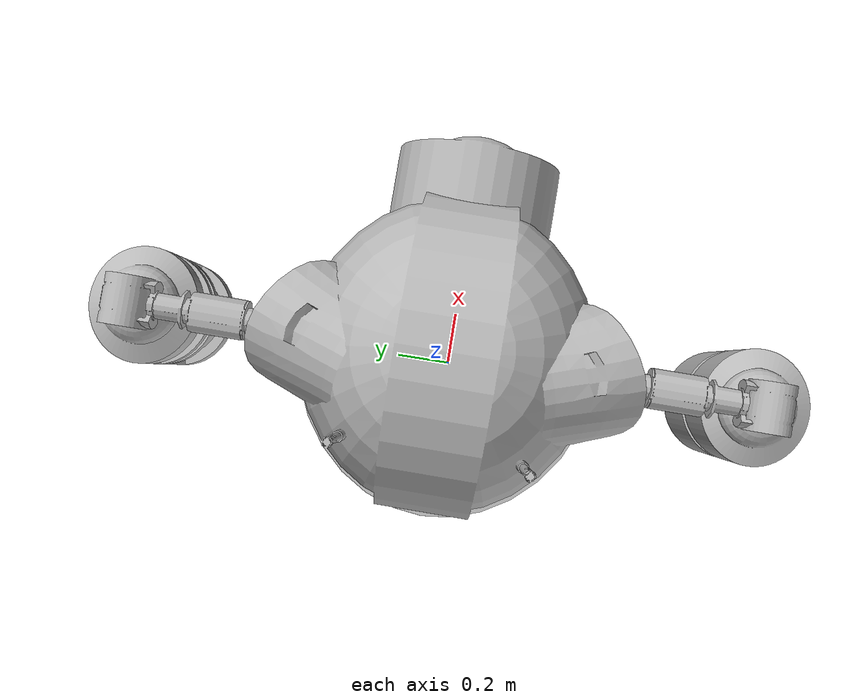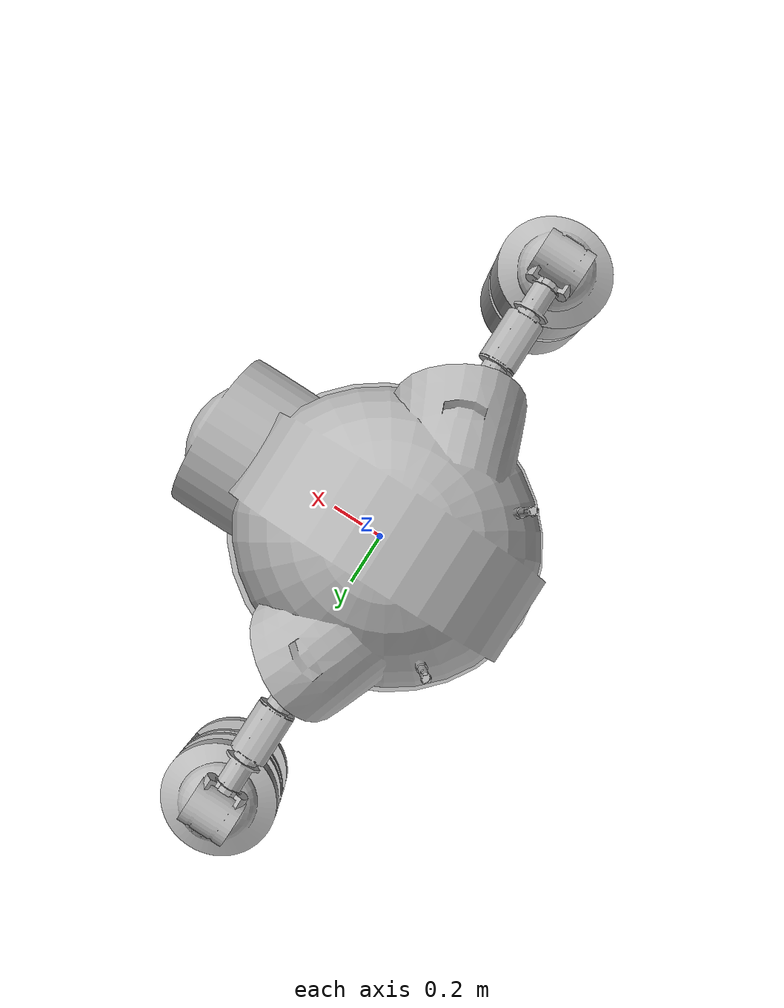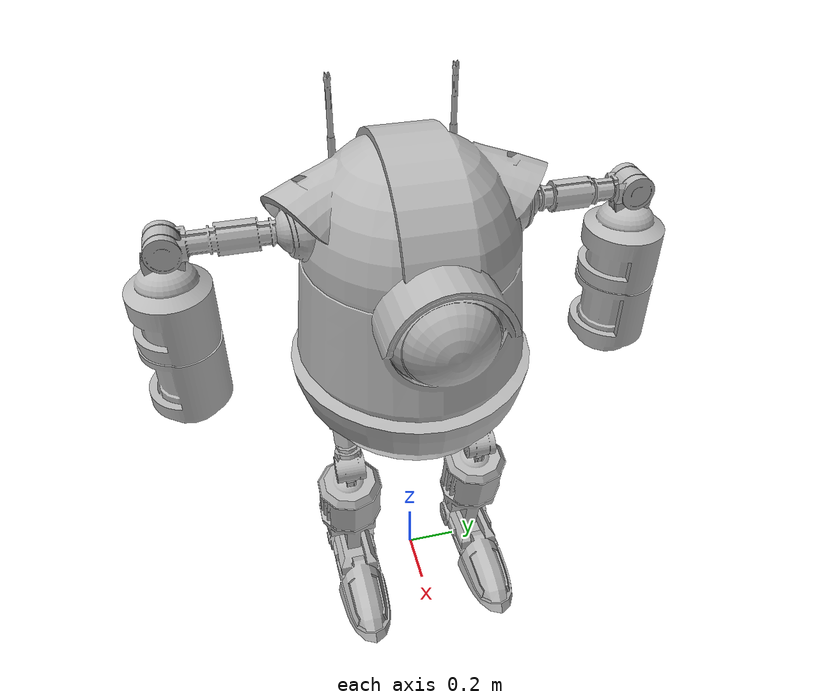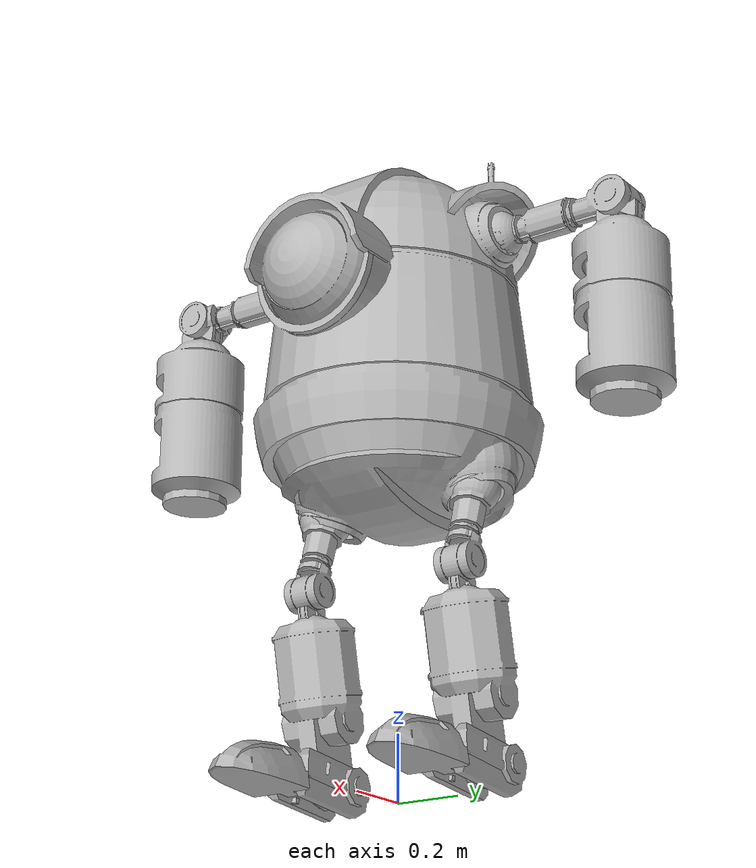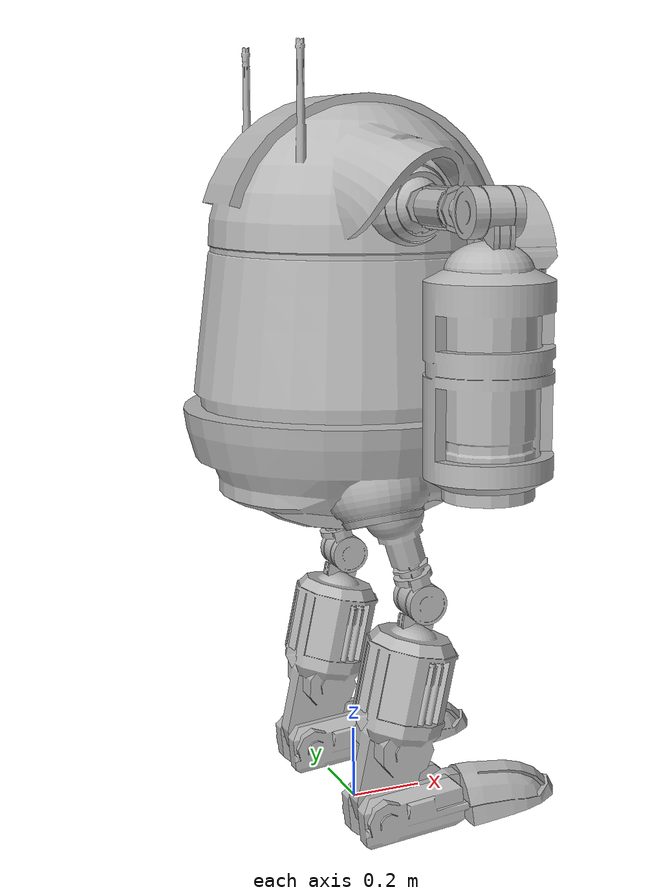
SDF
<sdf version='1.7'>
  <model name='catbot'>
    <link name='base_footprint'>
      <inertial>
        <pose>0 0 1.2093 0 -0 0</pose>
        <mass>4.3</mass>
        <inertia>
          <ixx>1.00004</ixx>
          <ixy>-2.2739</ixy>
          <ixz>0.10227</ixz>
          <iyy>1.00341</iyy>
          <iyz>1.5639</iyz>
          <izz>0.18742</izz>
        </inertia>
      </inertial>
      <collision name='base_footprint_collision'>
        <pose>0 0 0 0 -0 0</pose>
        <geometry>
          <cylinder>
            <length>0.001</length>
            <radius>0.001</radius>
          </cylinder>
        </geometry>
      </collision>
      <collision name='base_footprint_fixed_joint_lump__base_body_collision_1'>
        <pose>0 0 0.8 0 -0 0</pose>
        <geometry>
          <mesh>
            <scale>1 1 1</scale>
            <uri>model://catbot_description/meshes/dae/body.dae</uri>
          </mesh>
        </geometry>
      </collision>
      <visual name='base_footprint_visual'>
        <pose>0 0 0 0 -0 0</pose>
        <geometry>
          <cylinder>
            <length>0.001</length>
            <radius>0.001</radius>
          </cylinder>
        </geometry>
      </visual>
      <visual name='base_footprint_fixed_joint_lump__base_body_visual_1'>
        <pose>0 0 0.8 0 -0 0</pose>
        <geometry>
          <mesh>
            <scale>1 1 1</scale>
            <uri>model://catbot_description/meshes/dae/body.dae</uri>
          </mesh>
        </geometry>
      </visual>
    </link>
    <joint name='bum_zlj' type='revolute'>
      <pose relative_to='base_footprint'>-0.02 0.265 0.96 0 -0.3 0</pose>
      <parent>base_footprint</parent>
      <child>bum_zl</child>
      <axis>
        <xyz>0 0 1</xyz>
        <limit>
          <lower>-0.345</lower>
          <upper>0.345</upper>
          <effort>150</effort>
          <velocity>3</velocity>
        </limit>
        <dynamics>
          <spring_reference>0</spring_reference>
          <spring_stiffness>0</spring_stiffness>
        </dynamics>
      </axis>
    </joint>
    <link name='bum_zl'>
      <pose relative_to='bum_zlj'>0 0 0 0 -0 0</pose>
      <inertial>
        <pose>0 0 -0.19 0 -0 0</pose>
        <mass>0.3</mass>
        <inertia>
          <ixx>0.1</ixx>
          <ixy>0.1</ixy>
          <ixz>0.1</ixz>
          <iyy>0.1</iyy>
          <iyz>0.1</iyz>
          <izz>0.1</izz>
        </inertia>
      </inertial>
      <collision name='bum_zl_collision'>
        <pose>0 0 0 0 -0 1.571</pose>
        <geometry>
          <cylinder>
            <length>0.001</length>
            <radius>0.001</radius>
          </cylinder>
        </geometry>
      </collision>
      <visual name='bum_zl_visual'>
        <pose>0 0 0 0 -0 1.571</pose>
        <geometry>
          <cylinder>
            <length>0.001</length>
            <radius>0.001</radius>
          </cylinder>
        </geometry>
      </visual>
    </link>
    <joint name='bum_xlj' type='revolute'>
      <pose relative_to='bum_zl'>0 0 0 0 -0 0</pose>
      <parent>bum_zl</parent>
      <child>bum_xl</child>
      <axis>
        <xyz>1 0 0</xyz>
        <limit>
          <lower>-0.345</lower>
          <upper>1</upper>
          <effort>150</effort>
          <velocity>3</velocity>
        </limit>
        <dynamics>
          <spring_reference>0</spring_reference>
          <spring_stiffness>0</spring_stiffness>
        </dynamics>
      </axis>
    </joint>
    <link name='bum_xl'>
      <pose relative_to='bum_xlj'>0 0 0 0 -0 0</pose>
      <inertial>
        <pose>0 0 -0.19 0 -0 0</pose>
        <mass>0.3</mass>
        <inertia>
          <ixx>0.1</ixx>
          <ixy>0.1</ixy>
          <ixz>0.1</ixz>
          <iyy>0.1</iyy>
          <iyz>0.1</iyz>
          <izz>0.1</izz>
        </inertia>
      </inertial>
      <collision name='bum_xl_collision'>
        <pose>0 0 0 0 -0 1.571</pose>
        <geometry>
          <cylinder>
            <length>0.001</length>
            <radius>0.001</radius>
          </cylinder>
        </geometry>
      </collision>
      <visual name='bum_xl_visual'>
        <pose>0 0 0 0 -0 1.571</pose>
        <geometry>
          <cylinder>
            <length>0.001</length>
            <radius>0.001</radius>
          </cylinder>
        </geometry>
      </visual>
    </link>
    <joint name='bum_ylj' type='revolute'>
      <pose relative_to='bum_xl'>0 0 0 0 0 -3.14119</pose>
      <parent>bum_xl</parent>
      <child>left_hip</child>
      <axis>
        <xyz>0 1 0</xyz>
        <limit>
          <lower>0</lower>
          <upper>1</upper>
          <effort>150</effort>
          <velocity>3</velocity>
        </limit>
        <dynamics>
          <spring_reference>0</spring_reference>
          <spring_stiffness>0</spring_stiffness>
        </dynamics>
      </axis>
    </joint>
    <link name='left_hip'>
      <pose relative_to='bum_ylj'>0 0 0 0 -0 0</pose>
      <inertial>
        <pose>0 0 -0.19 0 -0 0</pose>
        <mass>0.3</mass>
        <inertia>
          <ixx>0.31319</ixx>
          <ixy>-1.5919</ixy>
          <ixz>0.00039</ixz>
          <iyy>0.314057</iyy>
          <iyz>-0.0006</iyz>
          <izz>0.02458</izz>
        </inertia>
      </inertial>
      <collision name='left_hip_collision'>
        <pose>0 0 0 0 -0 1.571</pose>
        <geometry>
          <mesh>
            <scale>1 1 1</scale>
            <uri>model://catbot_description/meshes/dae/hip.dae</uri>
          </mesh>
        </geometry>
      </collision>
      <visual name='left_hip_visual'>
        <pose>0 0 0 0 -0 1.571</pose>
        <geometry>
          <mesh>
            <scale>1 1 1</scale>
            <uri>model://catbot_description/meshes/dae/hip.dae</uri>
          </mesh>
        </geometry>
      </visual>
    </link>
    <joint name='knee_left' type='revolute'>
      <pose relative_to='left_hip'>0 0 -0.335 0 -0.5 0</pose>
      <parent>left_hip</parent>
      <child>left_shin</child>
      <axis>
        <xyz>0 1 0</xyz>
        <limit>
          <lower>-1.3</lower>
          <upper>0</upper>
          <effort>150</effort>
          <velocity>3</velocity>
        </limit>
        <dynamics>
          <spring_reference>0</spring_reference>
          <spring_stiffness>0</spring_stiffness>
        </dynamics>
      </axis>
    </joint>
    <link name='left_shin'>
      <pose relative_to='knee_left'>0 0 0 0 -0 0</pose>
      <inertial>
        <pose>0 0 -0.2 0 -0 0</pose>
        <mass>0.3</mass>
        <inertia>
          <ixx>0.283162</ixx>
          <ixy>0.00034</ixy>
          <ixz>0.001493</ixz>
          <iyy>0.28429</iyy>
          <iyz>0.000595</iyz>
          <izz>0.0277465</izz>
        </inertia>
      </inertial>
      <collision name='left_shin_collision'>
        <pose>0 0 0 0 -0 1.571</pose>
        <geometry>
          <mesh>
            <scale>1 1 1</scale>
            <uri>model://catbot_description/meshes/dae/shin.dae</uri>
          </mesh>
        </geometry>
      </collision>
      <visual name='left_shin_visual'>
        <pose>0 0 0 0 -0 1.571</pose>
        <geometry>
          <mesh>
            <scale>1 1 1</scale>
            <uri>model://catbot_description/meshes/dae/shin.dae</uri>
          </mesh>
        </geometry>
      </visual>
    </link>
    <joint name='ankle_lj' type='revolute'>
      <pose relative_to='left_shin'>0 0 -0.58 0 0.3 0</pose>
      <parent>left_shin</parent>
      <child>left_ankle</child>
      <axis>
        <xyz>0 1 0</xyz>
        <limit>
          <lower>-1.3</lower>
          <upper>0.3</upper>
          <effort>150</effort>
          <velocity>3</velocity>
        </limit>
        <dynamics>
          <spring_reference>0</spring_reference>
          <spring_stiffness>0</spring_stiffness>
        </dynamics>
      </axis>
    </joint>
    <link name='left_ankle'>
      <pose relative_to='ankle_lj'>0 0 0 0 -0 0</pose>
      <inertial>
        <pose>0 0 0 0 -0 0</pose>
        <mass>0.3</mass>
        <inertia>
          <ixx>0.119924</ixx>
          <ixy>-0.0003874</ixy>
          <ixz>-0.0010433</ixz>
          <iyy>0.166674</iyy>
          <iyz>5.80102</iyz>
          <izz>0.131467</izz>
        </inertia>
      </inertial>
      <collision name='left_ankle_collision'>
        <pose>-0.06 0 0 0 0 -3.14119</pose>
        <geometry>
          <mesh>
            <scale>1 1 1</scale>
            <uri>model://catbot_description/meshes/dae/ankle.dae</uri>
          </mesh>
        </geometry>
      </collision>
      <visual name='left_ankle_visual'>
        <pose>-0.06 0 0 0 0 -3.14119</pose>
        <geometry>
          <mesh>
            <scale>1 1 1</scale>
            <uri>model://catbot_description/meshes/dae/ankle.dae</uri>
          </mesh>
        </geometry>
      </visual>
    </link>
    <joint name='foot_lj' type='revolute'>
      <pose relative_to='left_ankle'>-0.16 0 -0.028 0 -0 0</pose>
      <parent>left_ankle</parent>
      <child>left_foot</child>
      <axis>
        <xyz>0 1 0</xyz>
        <limit>
          <lower>-0.4</lower>
          <upper>0.7</upper>
          <effort>150</effort>
          <velocity>3</velocity>
        </limit>
        <dynamics>
          <spring_reference>0</spring_reference>
          <spring_stiffness>0</spring_stiffness>
        </dynamics>
      </axis>
    </joint>
    <link name='left_foot'>
      <pose relative_to='foot_lj'>0 0 0 0 -0 0</pose>
      <inertial>
        <pose>0 0 -0.000843 0 -0 0</pose>
        <mass>0.51</mass>
        <inertia>
          <ixx>0.109189</ixx>
          <ixy>1.3005</ixy>
          <ixz>-0.0102</ixz>
          <iyy>0.156889</iyy>
          <iyz>3.44815</iyz>
          <izz>0.100001</izz>
        </inertia>
      </inertial>
      <collision name='left_foot_collision'>
        <pose>0 0 0 0 0 -3.14119</pose>
        <geometry>
          <mesh>
            <scale>1 1 1</scale>
            <uri>model://catbot_description/meshes/dae/foot.dae</uri>
          </mesh>
        </geometry>
      </collision>
      <collision name='left_foot_fixed_joint_lump__left_leg_contact_sensor_collision_1'>
        <pose>0 0 -0.043 0 -0 0</pose>
        <geometry>
          <box>
            <size>0.015 0.015 0.015</size>
          </box>
        </geometry>
      </collision>
      <visual name='left_foot_visual'>
        <pose>0 0 0 0 0 -3.14119</pose>
        <geometry>
          <mesh>
            <scale>1 1 1</scale>
            <uri>model://catbot_description/meshes/dae/foot.dae</uri>
          </mesh>
        </geometry>
      </visual>
      <visual name='left_foot_fixed_joint_lump__left_leg_contact_sensor_visual_1'>
        <pose>0 0 -0.043 0 -0 0</pose>
        <geometry>
          <box>
            <size>0.015 0.01 0.015</size>
          </box>
        </geometry>
      </visual>
    </link>
    <joint name='bum_zrj' type='revolute'>
      <pose relative_to='base_footprint'>-0.02 -0.265 0.96 0 -0.3 0</pose>
      <parent>base_footprint</parent>
      <child>bum_zr</child>
      <axis>
        <xyz>0 0 1</xyz>
        <limit>
          <lower>-0.345</lower>
          <upper>0.345</upper>
          <effort>150</effort>
          <velocity>3</velocity>
        </limit>
        <dynamics>
          <spring_reference>0</spring_reference>
          <spring_stiffness>0</spring_stiffness>
        </dynamics>
      </axis>
    </joint>
    <link name='bum_zr'>
      <pose relative_to='bum_zrj'>0 0 0 0 -0 0</pose>
      <inertial>
        <pose>0 0 -0.19 0 -0 0</pose>
        <mass>0.3</mass>
        <inertia>
          <ixx>0.1</ixx>
          <ixy>0.1</ixy>
          <ixz>0.1</ixz>
          <iyy>0.1</iyy>
          <iyz>0.1</iyz>
          <izz>0.1</izz>
        </inertia>
      </inertial>
      <collision name='bum_zr_collision'>
        <pose>0 0 0 0 -0 1.571</pose>
        <geometry>
          <cylinder>
            <length>0.001</length>
            <radius>0.001</radius>
          </cylinder>
        </geometry>
      </collision>
      <visual name='bum_zr_visual'>
        <pose>0 0 0 0 -0 1.571</pose>
        <geometry>
          <cylinder>
            <length>0.001</length>
            <radius>0.001</radius>
          </cylinder>
        </geometry>
      </visual>
    </link>
    <joint name='bum_xrj' type='revolute'>
      <pose relative_to='bum_zr'>0 0 0 0 -0 0</pose>
      <parent>bum_zr</parent>
      <child>bum_xr</child>
      <axis>
        <xyz>1 0 0</xyz>
        <limit>
          <lower>-1</lower>
          <upper>0.345</upper>
          <effort>150</effort>
          <velocity>3</velocity>
        </limit>
        <dynamics>
          <spring_reference>0</spring_reference>
          <spring_stiffness>0</spring_stiffness>
        </dynamics>
      </axis>
    </joint>
    <link name='bum_xr'>
      <pose relative_to='bum_xrj'>0 0 0 0 -0 0</pose>
      <inertial>
        <pose>0 0 -0.19 0 -0 0</pose>
        <mass>0.3</mass>
        <inertia>
          <ixx>0.1</ixx>
          <ixy>0.1</ixy>
          <ixz>0.1</ixz>
          <iyy>0.1</iyy>
          <iyz>0.1</iyz>
          <izz>0.1</izz>
        </inertia>
      </inertial>
      <collision name='bum_xr_collision'>
        <pose>0 0 0 0 -0 1.571</pose>
        <geometry>
          <cylinder>
            <length>0.001</length>
            <radius>0.001</radius>
          </cylinder>
        </geometry>
      </collision>
      <visual name='bum_xr_visual'>
        <pose>0 0 0 0 -0 1.571</pose>
        <geometry>
          <cylinder>
            <length>0.001</length>
            <radius>0.001</radius>
          </cylinder>
        </geometry>
      </visual>
    </link>
    <joint name='bum_yrj' type='revolute'>
      <pose relative_to='bum_xr'>0 0 0 0 0 -3.14119</pose>
      <parent>bum_xr</parent>
      <child>right_hip</child>
      <axis>
        <xyz>0 1 0</xyz>
        <limit>
          <lower>0</lower>
          <upper>1</upper>
          <effort>150</effort>
          <velocity>3</velocity>
        </limit>
        <dynamics>
          <spring_reference>0</spring_reference>
          <spring_stiffness>0</spring_stiffness>
        </dynamics>
      </axis>
    </joint>
    <link name='right_hip'>
      <pose relative_to='bum_yrj'>0 0 0 0 -0 0</pose>
      <inertial>
        <pose>0 0 -0.19 0 -0 0</pose>
        <mass>0.3</mass>
        <inertia>
          <ixx>0.31319</ixx>
          <ixy>-1.5919</ixy>
          <ixz>0.00039</ixz>
          <iyy>0.314057</iyy>
          <iyz>-0.0006</iyz>
          <izz>0.02458</izz>
        </inertia>
      </inertial>
      <collision name='right_hip_collision'>
        <pose>0 0 0 0 -0 1.571</pose>
        <geometry>
          <mesh>
            <scale>1 1 1</scale>
            <uri>model://catbot_description/meshes/dae/hip.dae</uri>
          </mesh>
        </geometry>
      </collision>
      <visual name='right_hip_visual'>
        <pose>0 0 0 0 -0 1.571</pose>
        <geometry>
          <mesh>
            <scale>1 1 1</scale>
            <uri>model://catbot_description/meshes/dae/hip.dae</uri>
          </mesh>
        </geometry>
      </visual>
    </link>
    <joint name='knee_right' type='revolute'>
      <pose relative_to='right_hip'>0 0 -0.335 0 -0.5 0</pose>
      <parent>right_hip</parent>
      <child>right_shin</child>
      <axis>
        <xyz>0 1 0</xyz>
        <limit>
          <lower>-1.3</lower>
          <upper>0</upper>
          <effort>150</effort>
          <velocity>3</velocity>
        </limit>
        <dynamics>
          <spring_reference>0</spring_reference>
          <spring_stiffness>0</spring_stiffness>
        </dynamics>
      </axis>
    </joint>
    <link name='right_shin'>
      <pose relative_to='knee_right'>0 0 0 0 -0 0</pose>
      <inertial>
        <pose>0 0 -0.2 0 -0 0</pose>
        <mass>0.3</mass>
        <inertia>
          <ixx>0.283162</ixx>
          <ixy>0.00034</ixy>
          <ixz>0.001493</ixz>
          <iyy>0.28429</iyy>
          <iyz>0.000595</iyz>
          <izz>0.0277465</izz>
        </inertia>
      </inertial>
      <collision name='right_shin_collision'>
        <pose>0 0 0 0 -0 1.571</pose>
        <geometry>
          <mesh>
            <scale>1 1 1</scale>
            <uri>model://catbot_description/meshes/dae/shin.dae</uri>
          </mesh>
        </geometry>
      </collision>
      <visual name='right_shin_visual'>
        <pose>0 0 0 0 -0 1.571</pose>
        <geometry>
          <mesh>
            <scale>1 1 1</scale>
            <uri>model://catbot_description/meshes/dae/shin.dae</uri>
          </mesh>
        </geometry>
      </visual>
    </link>
    <joint name='ankle_rj' type='revolute'>
      <pose relative_to='right_shin'>0 0 -0.58 0 0.3 0</pose>
      <parent>right_shin</parent>
      <child>right_ankle</child>
      <axis>
        <xyz>0 1 0</xyz>
        <limit>
          <lower>-1.3</lower>
          <upper>0.3</upper>
          <effort>150</effort>
          <velocity>3</velocity>
        </limit>
        <dynamics>
          <spring_reference>0</spring_reference>
          <spring_stiffness>0</spring_stiffness>
        </dynamics>
      </axis>
    </joint>
    <link name='right_ankle'>
      <pose relative_to='ankle_rj'>0 0 0 0 -0 0</pose>
      <inertial>
        <pose>0 0 0 0 -0 0</pose>
        <mass>0.3</mass>
        <inertia>
          <ixx>0.119924</ixx>
          <ixy>-0.0003874</ixy>
          <ixz>-0.0010433</ixz>
          <iyy>0.166674</iyy>
          <iyz>5.80102</iyz>
          <izz>0.131467</izz>
        </inertia>
      </inertial>
      <collision name='right_ankle_collision'>
        <pose>-0.06 0 0 0 0 -3.14119</pose>
        <geometry>
          <mesh>
            <scale>1 1 1</scale>
            <uri>model://catbot_description/meshes/dae/ankle.dae</uri>
          </mesh>
        </geometry>
      </collision>
      <visual name='right_ankle_visual'>
        <pose>-0.06 0 0 0 0 -3.14119</pose>
        <geometry>
          <mesh>
            <scale>1 1 1</scale>
            <uri>model://catbot_description/meshes/dae/ankle.dae</uri>
          </mesh>
        </geometry>
      </visual>
    </link>
    <joint name='foot_rj' type='revolute'>
      <pose relative_to='right_ankle'>-0.16 0 -0.028 0 -0 0</pose>
      <parent>right_ankle</parent>
      <child>right_foot</child>
      <axis>
        <xyz>0 1 0</xyz>
        <limit>
          <lower>-0.4</lower>
          <upper>0.7</upper>
          <effort>150</effort>
          <velocity>3</velocity>
        </limit>
        <dynamics>
          <spring_reference>0</spring_reference>
          <spring_stiffness>0</spring_stiffness>
        </dynamics>
      </axis>
    </joint>
    <link name='right_foot'>
      <pose relative_to='foot_rj'>0 0 0 0 -0 0</pose>
      <inertial>
        <pose>0 0 -0.000843 0 -0 0</pose>
        <mass>0.51</mass>
        <inertia>
          <ixx>0.119943</ixx>
          <ixy>-0.0003874</ixy>
          <ixz>-0.0010433</ixz>
          <iyy>0.166693</iyy>
          <iyz>5.80102</iyz>
          <izz>0.131468</izz>
        </inertia>
      </inertial>
      <collision name='right_foot_collision'>
        <pose>0 0 0 0 0 -3.14119</pose>
        <geometry>
          <mesh>
            <scale>1 1 1</scale>
            <uri>model://catbot_description/meshes/dae/foot.dae</uri>
          </mesh>
        </geometry>
      </collision>
      <collision name='right_foot_fixed_joint_lump__right_leg_contact_sensor_collision_1'>
        <pose>0 0 -0.043 0 -0 0</pose>
        <geometry>
          <box>
            <size>0.015 0.015 0.015</size>
          </box>
        </geometry>
      </collision>
      <visual name='right_foot_visual'>
        <pose>0 0 0 0 0 -3.14119</pose>
        <geometry>
          <mesh>
            <scale>1 1 1</scale>
            <uri>model://catbot_description/meshes/dae/foot.dae</uri>
          </mesh>
        </geometry>
      </visual>
      <visual name='right_foot_fixed_joint_lump__right_leg_contact_sensor_visual_1'>
        <pose>0 0 -0.043 0 -0 0</pose>
        <geometry>
          <box>
            <size>0.015 0.015 0.015</size>
          </box>
        </geometry>
      </visual>
    </link>
    <joint name='shoulder_zlj' type='revolute'>
      <pose relative_to='base_footprint'>0 0.3 1.67 0 0 -3.14119</pose>
      <parent>base_footprint</parent>
      <child>shoulder_zl</child>
      <axis>
        <xyz>0 0 1</xyz>
        <limit>
          <lower>-1.65</lower>
          <upper>0.1</upper>
          <effort>150</effort>
          <velocity>3</velocity>
        </limit>
        <dynamics>
          <spring_reference>0</spring_reference>
          <spring_stiffness>0</spring_stiffness>
        </dynamics>
      </axis>
    </joint>
    <link name='shoulder_zl'>
      <pose relative_to='shoulder_zlj'>0 0 0 0 -0 0</pose>
      <inertial>
        <pose>0 0 0 0 -0 0</pose>
        <mass>0.3</mass>
        <inertia>
          <ixx>0.1</ixx>
          <ixy>0.1</ixy>
          <ixz>0.1</ixz>
          <iyy>0.1</iyy>
          <iyz>0.1</iyz>
          <izz>0.1</izz>
        </inertia>
      </inertial>
      <collision name='shoulder_zl_collision'>
        <pose>0 0 0 0 -0 1.571</pose>
        <geometry>
          <cylinder>
            <length>0.001</length>
            <radius>0.001</radius>
          </cylinder>
        </geometry>
      </collision>
      <visual name='shoulder_zl_visual'>
        <pose>0 0 0 0 -0 1.571</pose>
        <geometry>
          <cylinder>
            <length>0.001</length>
            <radius>0.001</radius>
          </cylinder>
        </geometry>
      </visual>
    </link>
    <joint name='shoulder_xlj' type='revolute'>
      <pose relative_to='shoulder_zl'>0 0 0 0 -0 0</pose>
      <parent>shoulder_zl</parent>
      <child>shoulder_xl</child>
      <axis>
        <xyz>1 0 0</xyz>
        <limit>
          <lower>-0.1</lower>
          <upper>1.6</upper>
          <effort>150</effort>
          <velocity>3</velocity>
        </limit>
        <dynamics>
          <spring_reference>0</spring_reference>
          <spring_stiffness>0</spring_stiffness>
        </dynamics>
      </axis>
    </joint>
    <link name='shoulder_xl'>
      <pose relative_to='shoulder_xlj'>0 0 0 0 -0 0</pose>
      <inertial>
        <pose>0 0 0 0 -0 0</pose>
        <mass>0.3</mass>
        <inertia>
          <ixx>0.1</ixx>
          <ixy>0.1</ixy>
          <ixz>0.1</ixz>
          <iyy>0.1</iyy>
          <iyz>0.1</iyz>
          <izz>0.1</izz>
        </inertia>
      </inertial>
      <collision name='shoulder_xl_collision'>
        <pose>0 0 0 0 -0 1.571</pose>
        <geometry>
          <cylinder>
            <length>0.001</length>
            <radius>0.001</radius>
          </cylinder>
        </geometry>
      </collision>
      <visual name='shoulder_xl_visual'>
        <pose>0 0 0 0 -0 1.571</pose>
        <geometry>
          <cylinder>
            <length>0.001</length>
            <radius>0.001</radius>
          </cylinder>
        </geometry>
      </visual>
    </link>
    <joint name='shoulder_ylj' type='revolute'>
      <pose relative_to='shoulder_xl'>0 0 0 0 0 -3.14119</pose>
      <parent>shoulder_xl</parent>
      <child>left_shoulder</child>
      <axis>
        <xyz>0 1 0</xyz>
        <limit>
          <lower>-3</lower>
          <upper>0</upper>
          <effort>150</effort>
          <velocity>3</velocity>
        </limit>
        <dynamics>
          <spring_reference>0</spring_reference>
          <spring_stiffness>0</spring_stiffness>
        </dynamics>
      </axis>
    </joint>
    <link name='left_shoulder'>
      <pose relative_to='shoulder_ylj'>0 0 0 0 -0 0</pose>
      <inertial>
        <pose>0 0 0 0 -0 0</pose>
        <mass>0.3</mass>
        <inertia>
          <ixx>0.030306</ixx>
          <ixy>1.07243</ixy>
          <ixz>-0.00014</ixz>
          <iyy>0.123799</iyy>
          <iyz>-3.24634</iyz>
          <izz>0.10389</izz>
        </inertia>
      </inertial>
      <collision name='left_shoulder_collision'>
        <pose>0 0 0 1.571 -0 1.571</pose>
        <geometry>
          <mesh>
            <scale>1 1 1</scale>
            <uri>model://catbot_description/meshes/dae/arm.dae</uri>
          </mesh>
        </geometry>
      </collision>
      <visual name='left_shoulder_visual'>
        <pose>0 0 0 1.571 -0 1.571</pose>
        <geometry>
          <mesh>
            <scale>1 1 1</scale>
            <uri>model://catbot_description/meshes/dae/arm.dae</uri>
          </mesh>
        </geometry>
      </visual>
    </link>
    <joint name='forearm_ylj' type='revolute'>
      <pose relative_to='left_shoulder'>0 0.48 0 0 0 -3.14119</pose>
      <parent>left_shoulder</parent>
      <child>left_forearm</child>
      <axis>
        <xyz>1 0 0</xyz>
        <limit>
          <lower>-1.6</lower>
          <upper>0</upper>
          <effort>150</effort>
          <velocity>3</velocity>
        </limit>
        <dynamics>
          <spring_reference>0</spring_reference>
          <spring_stiffness>0</spring_stiffness>
        </dynamics>
      </axis>
    </joint>
    <link name='left_forearm'>
      <pose relative_to='forearm_ylj'>0 0 0 0 -0 0</pose>
      <inertial>
        <pose>0 0 0 0 -0 0</pose>
        <mass>0.3</mass>
        <inertia>
          <ixx>0.37633</ixx>
          <ixy>-5.2759</ixy>
          <ixz>-8.13739</ixz>
          <iyy>0.382769</iyy>
          <iyz>-0.00136</iyz>
          <izz>0.03977</izz>
        </inertia>
      </inertial>
      <collision name='left_forearm_collision'>
        <pose>0 0 0 0 0 -3.14119</pose>
        <geometry>
          <mesh>
            <scale>1 1 1</scale>
            <uri>model://catbot_description/meshes/dae/forearm.dae</uri>
          </mesh>
        </geometry>
      </collision>
      <visual name='left_forearm_visual'>
        <pose>0 0 0 0 0 -3.14119</pose>
        <geometry>
          <mesh>
            <scale>1 1 1</scale>
            <uri>model://catbot_description/meshes/dae/forearm.dae</uri>
          </mesh>
        </geometry>
      </visual>
    </link>
    <joint name='shoulder_zrj' type='revolute'>
      <pose relative_to='base_footprint'>0 -0.3 1.67 0 -0 0</pose>
      <parent>base_footprint</parent>
      <child>shoulder_zr</child>
      <axis>
        <xyz>0 0 1</xyz>
        <limit>
          <lower>-0.345</lower>
          <upper>1.65</upper>
          <effort>150</effort>
          <velocity>3</velocity>
        </limit>
        <dynamics>
          <spring_reference>0</spring_reference>
          <spring_stiffness>0</spring_stiffness>
        </dynamics>
      </axis>
    </joint>
    <link name='shoulder_zr'>
      <pose relative_to='shoulder_zrj'>0 0 0 0 -0 0</pose>
      <inertial>
        <pose>0 0 0 0 -0 0</pose>
        <mass>0.3</mass>
        <inertia>
          <ixx>0.1</ixx>
          <ixy>0.1</ixy>
          <ixz>0.1</ixz>
          <iyy>0.1</iyy>
          <iyz>0.1</iyz>
          <izz>0.1</izz>
        </inertia>
      </inertial>
      <collision name='shoulder_zr_collision'>
        <pose>0 0 0 0 -0 1.571</pose>
        <geometry>
          <cylinder>
            <length>0.001</length>
            <radius>0.001</radius>
          </cylinder>
        </geometry>
      </collision>
      <visual name='shoulder_zr_visual'>
        <pose>0 0 0 0 -0 1.571</pose>
        <geometry>
          <cylinder>
            <length>0.001</length>
            <radius>0.001</radius>
          </cylinder>
        </geometry>
      </visual>
    </link>
    <joint name='shoulder_xrj' type='revolute'>
      <pose relative_to='shoulder_zr'>0 0 0 0 -0 0</pose>
      <parent>shoulder_zr</parent>
      <child>shoulder_xr</child>
      <axis>
        <xyz>1 0 0</xyz>
        <limit>
          <lower>-0.1</lower>
          <upper>1.6</upper>
          <effort>150</effort>
          <velocity>3</velocity>
        </limit>
        <dynamics>
          <spring_reference>0</spring_reference>
          <spring_stiffness>0</spring_stiffness>
        </dynamics>
      </axis>
    </joint>
    <link name='shoulder_xr'>
      <pose relative_to='shoulder_xrj'>0 0 0 0 -0 0</pose>
      <inertial>
        <pose>0 0 0 0 -0 0</pose>
        <mass>0.3</mass>
        <inertia>
          <ixx>0.1</ixx>
          <ixy>0.1</ixy>
          <ixz>0.1</ixz>
          <iyy>0.1</iyy>
          <iyz>0.1</iyz>
          <izz>0.1</izz>
        </inertia>
      </inertial>
      <collision name='shoulder_xr_collision'>
        <pose>0 0 0 0 -0 1.571</pose>
        <geometry>
          <cylinder>
            <length>0.001</length>
            <radius>0.001</radius>
          </cylinder>
        </geometry>
      </collision>
      <visual name='shoulder_xr_visual'>
        <pose>0 0 0 0 -0 1.571</pose>
        <geometry>
          <cylinder>
            <length>0.001</length>
            <radius>0.001</radius>
          </cylinder>
        </geometry>
      </visual>
    </link>
    <joint name='shoulder_yrj' type='revolute'>
      <pose relative_to='shoulder_xr'>0 0 0 0 0 -3.14119</pose>
      <parent>shoulder_xr</parent>
      <child>right_shoulder</child>
      <axis>
        <xyz>0 1 0</xyz>
        <limit>
          <lower>0</lower>
          <upper>3</upper>
          <effort>150</effort>
          <velocity>3</velocity>
        </limit>
        <dynamics>
          <spring_reference>0</spring_reference>
          <spring_stiffness>0</spring_stiffness>
        </dynamics>
      </axis>
    </joint>
    <link name='right_shoulder'>
      <pose relative_to='shoulder_yrj'>0 0 0 0 -0 0</pose>
      <inertial>
        <pose>0 0 0 0 -0 0</pose>
        <mass>0.3</mass>
        <inertia>
          <ixx>0.030306</ixx>
          <ixy>1.07243</ixy>
          <ixz>-0.00014</ixz>
          <iyy>0.123799</iyy>
          <iyz>-3.24634</iyz>
          <izz>0.10389</izz>
        </inertia>
      </inertial>
      <collision name='right_shoulder_collision'>
        <pose>0 0 0 1.571 -0 1.571</pose>
        <geometry>
          <mesh>
            <scale>1 1 1</scale>
            <uri>model://catbot_description/meshes/dae/arm.dae</uri>
          </mesh>
        </geometry>
      </collision>
      <visual name='right_shoulder_visual'>
        <pose>0 0 0 1.571 -0 1.571</pose>
        <geometry>
          <mesh>
            <scale>1 1 1</scale>
            <uri>model://catbot_description/meshes/dae/arm.dae</uri>
          </mesh>
        </geometry>
      </visual>
    </link>
    <joint name='forearm_yrj' type='revolute'>
      <pose relative_to='right_shoulder'>0 0.48 0 0 0 -3.14119</pose>
      <parent>right_shoulder</parent>
      <child>right_forearm</child>
      <axis>
        <xyz>1 0 0</xyz>
        <limit>
          <lower>-1.6</lower>
          <upper>0</upper>
          <effort>150</effort>
          <velocity>3</velocity>
        </limit>
        <dynamics>
          <spring_reference>0</spring_reference>
          <spring_stiffness>0</spring_stiffness>
        </dynamics>
      </axis>
    </joint>
    <link name='right_forearm'>
      <pose relative_to='forearm_yrj'>0 0 0 0 -0 0</pose>
      <inertial>
        <pose>0 0 0 0 -0 0</pose>
        <mass>0.3</mass>
        <inertia>
          <ixx>0.37633</ixx>
          <ixy>-5.2759</ixy>
          <ixz>-8.13739</ixz>
          <iyy>0.382769</iyy>
          <iyz>-0.00136</iyz>
          <izz>0.03977</izz>
        </inertia>
      </inertial>
      <collision name='right_forearm_collision'>
        <pose>0 0 0 0 -0 0</pose>
        <geometry>
          <mesh>
            <scale>1 1 1</scale>
            <uri>model://catbot_description/meshes/dae/forearm.dae</uri>
          </mesh>
        </geometry>
      </collision>
      <visual name='right_forearm_visual'>
        <pose>0 0 0 0 -0 0</pose>
        <geometry>
          <mesh>
            <scale>1 1 1</scale>
            <uri>model://catbot_description/meshes/dae/forearm.dae</uri>
          </mesh>
        </geometry>
      </visual>
    </link>
  </model>
</sdf>
